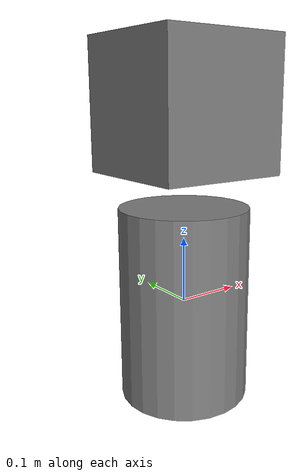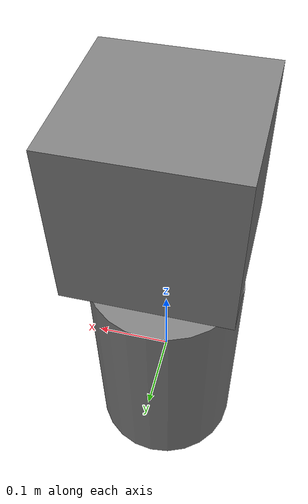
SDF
<?xml version="1.0" ?>
<sdf version="1.6">
  <model name="light_model">
    <static>true</static>

    <link name="cylinder">
      <pose>0 0 0 0 0 0</pose>
      <collision name="collision">
        <geometry>
          <cylinder>
            <radius>0.1</radius>
            <length>0.3</length>
          </cylinder>
        </geometry>
      </collision>
      <visual name="visual">
        <geometry>
          <cylinder>
            <radius>0.1</radius>
            <length>0.3</length>
          </cylinder>
        </geometry>
        <material>
          <ambient>0.5 0.5 0.5 1</ambient>
          <diffuse>0.5 0.5 0.5 1</diffuse>
          <specular>0.1 0.1 0.1 1</specular>
        </material>
      </visual>

      <light name="light_source1" type="spot">
        <pose>0 0 0.15 0 0 0</pose>
        <diffuse>0 1 0 1</diffuse>
        <specular>0 1 0 1</specular>
        <attenuation>
          <range>20</range>
          <constant>0.5</constant>
          <linear>0.01</linear>
          <quadratic>0.001</quadratic>
        </attenuation>
        <spot>
          <inner_angle>0.6</inner_angle>
          <outer_angle>1.0</outer_angle>
          <falloff>1.0</falloff>
        </spot>
        <cast_shadows>false</cast_shadows>
      </light>

      <light name="light_source2" type="spot">
        <pose>0 0 0 0 0 0</pose>
        <diffuse>1 0 0 1</diffuse>
        <specular>1 0 0 1</specular>
        <attenuation>
          <range>20</range>
          <constant>0.5</constant>
          <linear>0.01</linear>
          <quadratic>0.001</quadratic>
        </attenuation>
        <spot>
          <inner_angle>0.6</inner_angle>
          <outer_angle>1.0</outer_angle>
          <falloff>1.0</falloff>
        </spot>
        <cast_shadows>false</cast_shadows>
      </light>
    </link>

    <link name="box">
      <pose>0 0 0.3 0 0 0</pose>
      <collision name="collision">
        <geometry>
          <box>
            <size>0.2 0.2 0.2</size>
          </box>
        </geometry>
      </collision>
      <visual name="visual">
        <geometry>
          <box>
            <size>0.2 0.2 0.2</size>
          </box>
        </geometry>
        <material>
          <ambient>0.5 0.5 0.5 1</ambient>
          <diffuse>0.5 0.5 0.5 1</diffuse>
          <specular>0.1 0.1 0.1 1</specular>
        </material>
      </visual>

      <light name="light_source3" type="spot">
        <pose>0 0 0.1 0 0 0</pose>
        <diffuse>1 1 0 1</diffuse>
        <specular>1 1 0 1</specular>
        <attenuation>
          <range>20</range>
          <constant>0.5</constant>
          <linear>0.01</linear>
          <quadratic>0.001</quadratic>
        </attenuation>
        <spot>
          <inner_angle>0.6</inner_angle>
          <outer_angle>1.0</outer_angle>
          <falloff>1.0</falloff>
        </spot>
        <cast_shadows>false</cast_shadows>
      </light>

      <light name="light_source4" type="spot">
        <pose>0 0 -0.1 0 0 0</pose>
        <diffuse>1 1 0 1</diffuse>
        <specular>1 1 0 1</specular>
        <attenuation>
          <range>20</range>
          <constant>0.5</constant>
          <linear>0.01</linear>
          <quadratic>0.001</quadratic>
        </attenuation>
        <spot>
          <inner_angle>0.6</inner_angle>
          <outer_angle>1.0</outer_angle>
          <falloff>1.0</falloff>
        </spot>
        <cast_shadows>false</cast_shadows>
      </light>
    </link>

    <joint name="box_to_cylinder" type="fixed">
      <parent>cylinder</parent>
      <child>box</child>
    </joint>

    <plugin name="light_control" filename="libFlashLightPlugin.so">
      <enable>true</enable>
      <light>
        <id>cylinder/light_source1</id>
        <duration>0.5</duration>
        <interval>0.5</interval>
      </light>
      <light>
        <id>cylinder/light_source2</id>
        <duration>0.3</duration>
        <interval>1.2</interval>
        <color>1 0 0</color>
      </light>
      <light>
        <id>box/light_source3</id>
        <duration>1.0</duration>
        <interval>0.1</interval>
        <enable>false</enable>
      </light>
      <light>
        <id>box/light_source4</id>
        <block>
          <duration>1.0</duration>
          <interval>0</interval>
          <color>1 1 0</color>
        </block>
        <block>
          <duration>1.0</duration>
          <interval>0.3</interval>
          <color>0 1 1</color>
        </block>
        <enable>true</enable>
      </light>
    </plugin>
  </model>
</sdf>
